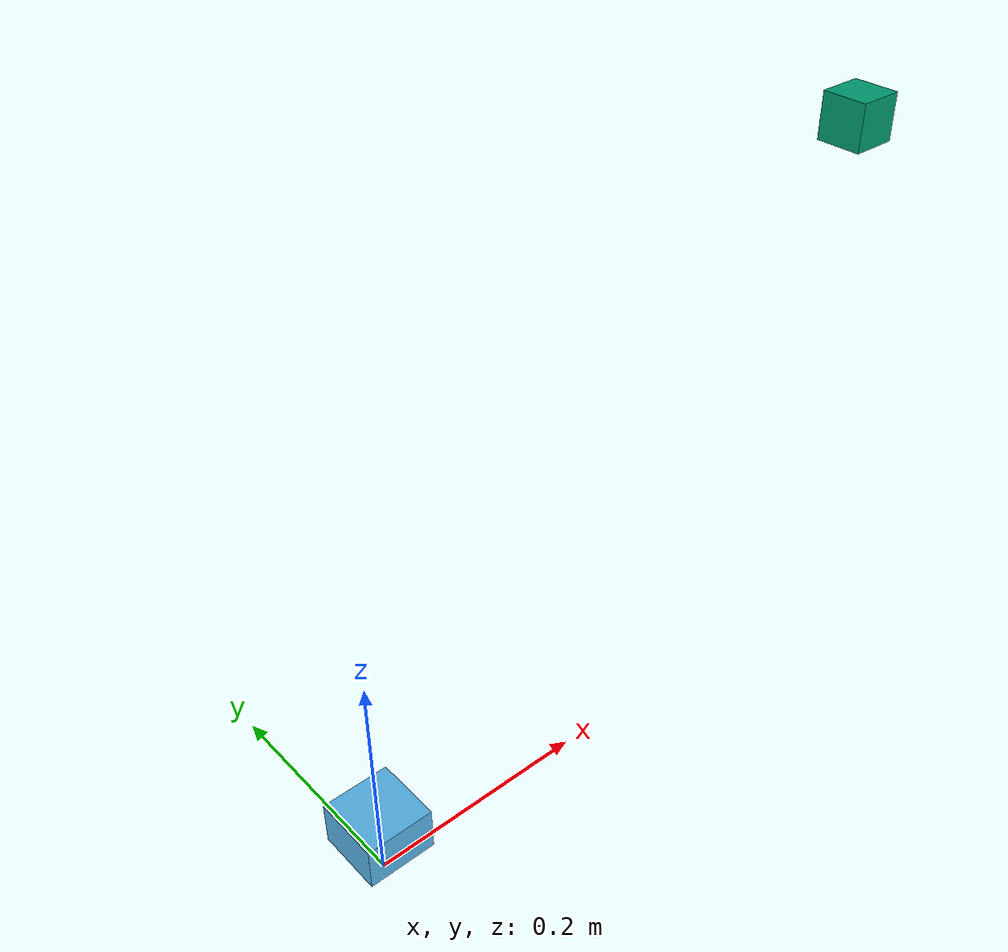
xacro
<?xml version="1.0"?>
<robot xmlns:xacro="http://www.ros.org/wiki/xacro" name="sensor_plugins_test">

  <link name="world"/>

  <!-- Contact probe: slides freely and settles on the ground plane. -->
  <link name="pad">
    <inertial>
      <mass value="0.1"/>
      <origin xyz="0 0 0"/>
      <inertia ixx="1e-4" ixy="0" ixz="0" iyy="1e-4" iyz="0" izz="1e-4"/>
    </inertial>
    <collision>
      <origin xyz="0 0 0"/>
      <geometry><box size="0.06 0.06 0.04"/></geometry>
    </collision>
    <visual>
      <origin xyz="0 0 0"/>
      <geometry><box size="0.06 0.06 0.04"/></geometry>
    </visual>
  </link>

  <joint name="slide" type="prismatic">
    <parent link="world"/>
    <child link="pad"/>
    <origin xyz="0 0 0.05"/>
    <axis xyz="0 0 1"/>
    <limit effort="100" velocity="10" lower="-0.5" upper="0.5"/>
  </joint>

  <!-- Wrench probe: welded, hanging clear of the floor, so the joint carries
       its full weight (0.2 kg * 9.81 = 1.962 N). -->
  <link name="hanger">
    <inertial>
      <mass value="0.2"/>
      <origin xyz="0 0 0"/>
      <inertia ixx="1e-4" ixy="0" ixz="0" iyy="1e-4" iyz="0" izz="1e-4"/>
    </inertial>
    <collision>
      <origin xyz="0 0 0"/>
      <geometry><box size="0.04 0.04 0.04"/></geometry>
    </collision>
    <visual>
      <origin xyz="0 0 0"/>
      <geometry><box size="0.04 0.04 0.04"/></geometry>
    </visual>
  </link>

  <joint name="world_to_hanger" type="fixed">
    <parent link="world"/>
    <child link="hanger"/>
    <origin xyz="0.5 0 0.5"/>
  </joint>

  <mujoco>
    <reference name="pad">
      <!-- centre of the pad, for the IMU and pose sensors -->
      <site name="pad_site" size="0.005" pos="0 0 0"/>
    </reference>

    <reference name="hanger">
      <site name="hanger_site" size="0.005" pos="0 0 0"/>
    </reference>

    <sensor>
      <accelerometer name="pad_accel" site="pad_site"/>
      <gyro name="pad_gyro" site="pad_site"/>
      <framepos name="pad_framepos" objtype="site" objname="pad_site"/>
      <framequat name="pad_framequat" objtype="site" objname="pad_site"/>
    </sensor>

    <sensor>
      <force name="hanger_force" site="hanger_site"/>
      <torque name="hanger_torque" site="hanger_site"/>
    </sensor>
  </mujoco>

  <ros2_control name="SensorPluginsHW" type="system">
    <hardware>
      <plugin>mujoco_ros2_control/MujocoSystem</plugin>
    </hardware>

    <joint name="slide">
      <command_interface name="effort"/>
      <state_interface name="position"/>
      <state_interface name="velocity"/>
      <state_interface name="effort"/>
    </joint>

    <sensor name="pad_imu">
      <param name="plugin">mujoco_ros2_control/ImuSensor</param>
      <param name="site">pad_site</param>
      <state_interface name="orientation.x"/>
      <state_interface name="orientation.y"/>
      <state_interface name="orientation.z"/>
      <state_interface name="orientation.w"/>
      <state_interface name="angular_velocity.x"/>
      <state_interface name="angular_velocity.y"/>
      <state_interface name="angular_velocity.z"/>
      <state_interface name="linear_acceleration.x"/>
      <state_interface name="linear_acceleration.y"/>
      <state_interface name="linear_acceleration.z"/>
    </sensor>

    <sensor name="pad_wrench">
      <param name="plugin">mujoco_ros2_control/ForceTorqueSensor</param>
      <param name="site">hanger_site</param>
      <state_interface name="force.x"/>
      <state_interface name="force.y"/>
      <state_interface name="force.z"/>
      <state_interface name="torque.x"/>
      <state_interface name="torque.y"/>
      <state_interface name="torque.z"/>
    </sensor>

    <sensor name="pad_pose">
      <param name="plugin">mujoco_ros2_control/PoseSensor</param>
      <param name="site">pad_site</param>
      <state_interface name="position.x"/>
      <state_interface name="position.y"/>
      <state_interface name="position.z"/>
      <state_interface name="orientation.x"/>
      <state_interface name="orientation.y"/>
      <state_interface name="orientation.z"/>
      <state_interface name="orientation.w"/>
    </sensor>
  </ros2_control>

</robot>
